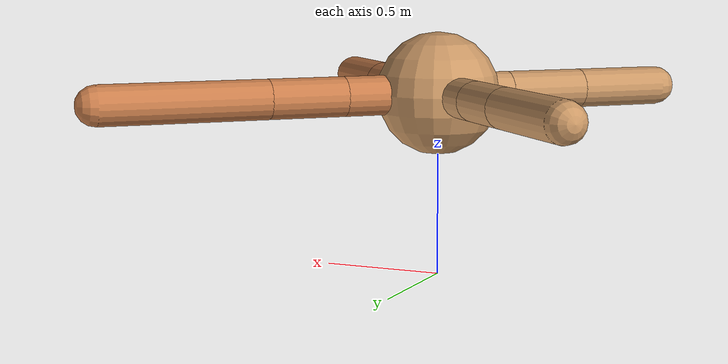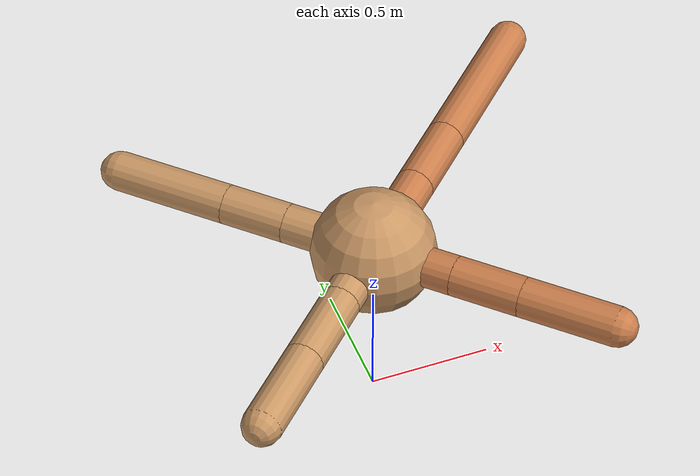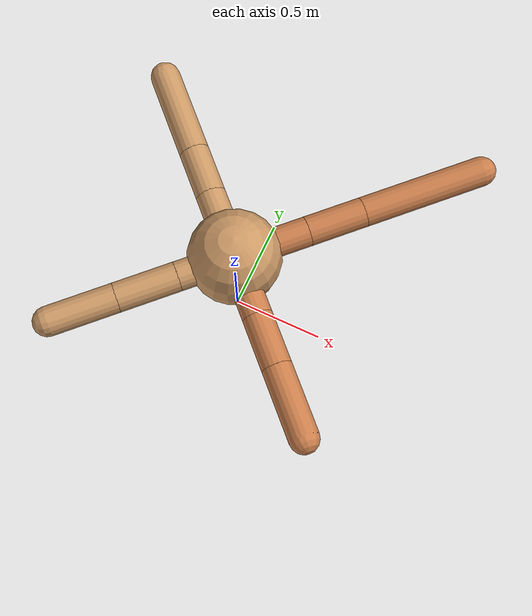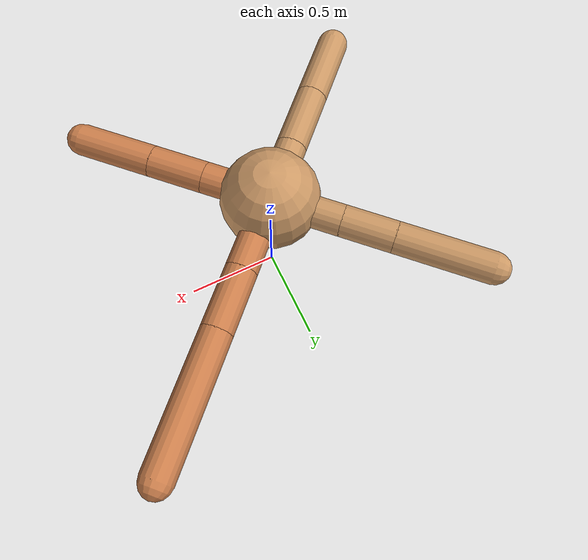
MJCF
<mujoco model="ant">
  <compiler angle="degree" coordinate="local" inertiafromgeom="true" />
  <option integrator="RK4" timestep="0.01" />
  <custom>
    <numeric data="0.0 0.0 0.55 1.0 0.0 0.0 0.0 0.0 1.0 0.0 -1.0 0.0 -1.0 0.0 1.0" name="init_qpos" />
  </custom>
  <default>
    <joint armature="1" damping="1" limited="true" />
    <geom conaffinity="0" condim="3" density="5.0" friction="1.5 0.1 0.1" margin="0.01" rgba="0.8 0.6 0.4 1" />
  </default>
  <worldbody>
    <body name="torso" pos="0 0 0.75">
      <geom name="torso_geom" pos="0 0 0" size="0.25" type="sphere" />

      <body name="front_left_leg" pos="0 0 0">
        <geom fromto="0.0 0.0 0.0 0.2859385372810766 0.2859385372810766 0.0" name="aux_1_geom" size="0.08" type="capsule" rgba=".8 .5 .3 1" />
        <body name="aux_1" pos="0.2859385372810766 0.2859385372810766 0.0">
          <joint axis="0 0 1" name="hip_1" pos="0.0 0.0 0.0" range="-40 40" type="hinge" />
          <geom fromto="0.0 0.0 0.0 0.21979011343541655 0.21979011343541655 0.0" name="left_leg_geom" size="0.08" type="capsule" rgba=".8 .5 .3 1" />
          <body pos="0.21979011343541655 0.21979011343541655 0.0" name="front_left_foot">
            <joint axis="-1 1 0" name="ankle_1" pos="0.0 0.0 0.0" range="30 100" type="hinge" />
            <geom fromto="0.0 0.0 0.0 0.47463465256232573 0.47463465256232573 0.0" name="left_ankle_geom" size="0.08" type="capsule" rgba=".8 .5 .3 1" />
          </body>
        </body>
      </body>
      <body name="front_right_leg" pos="0 0 0">
        <geom fromto="0.0 0.0 0.0 -0.2603021658703614 0.2603021658703614 0.0" name="aux_2_geom" size="0.08" type="capsule" />
        <body name="aux_2" pos="-0.2603021658703614 0.2603021658703614 0.0">
          <joint axis="0 0 1" name="hip_2" pos="0.0 0.0 0.0" range="-40 40" type="hinge" />
          <geom fromto="0.0 0.0 0.0 -0.18655810813117732 0.18655810813117732 0.0" name="right_leg_geom" size="0.08" type="capsule" />
          <body pos="-0.18655810813117732 0.18655810813117732 0.0" name="front_right_foot">
            <joint axis="1 1 0" name="ankle_2" pos="0.0 0.0 0.0" range="-100 -30" type="hinge" />
            <geom fromto="0.0 0.0 0.0 -0.3384754704927733 0.3384754704927733 0.0" name="right_ankle_geom" size="0.08" type="capsule" />
          </body>
        </body>
      </body>
      <body name="left_back_leg" pos="0 0 0">
        <geom fromto="0.0 0.0 0.0 -0.2206151107918263 -0.2206151107918263 0.0" name="aux_3_geom" size="0.08" type="capsule" />
        <body name="aux_3" pos="-0.2206151107918263 -0.2206151107918263 0.0">
          <joint axis="0 0 1" name="hip_3" pos="0.0 0.0 0.0" range="-40 40" type="hinge" />
          <geom fromto="0.0 0.0 0.0 -0.23331743413509765 -0.23331743413509765 0.0" name="back_leg_geom" size="0.08" type="capsule" />
          <body pos="-0.23331743413509765 -0.23331743413509765 0.0" name="left_back_foot">
            <joint axis="-1 1 0" name="ankle_3" pos="0.0 0.0 0.0" range="-100 -30" type="hinge" />
            <geom fromto="0.0 0.0 0.0 -0.25807727140990144 -0.25807727140990144 0.0" name="third_ankle_geom" size="0.08" type="capsule" />
          </body>
        </body>
      </body>
      <body name="right_back_leg" pos="0 0 0">
        <geom fromto="0.0 0.0 0.0 0.24400351738328255 -0.24400351738328255 0.0" name="aux_4_geom" size="0.08" type="capsule" rgba=".8 .5 .3 1" />
        <body name="aux_4" pos="0.24400351738328255 -0.24400351738328255 0.0">
          <joint axis="0 0 1" name="hip_4" pos="0.0 0.0 0.0" range="-40 40" type="hinge" />
          <geom fromto="0.0 0.0 0.0 0.2000885055518575 -0.2000885055518575 0.0" name="rightback_leg_geom" size="0.08" type="capsule" rgba=".8 .5 .3 1" />
          <body pos="0.2000885055518575 -0.2000885055518575 0.0" name="right_back_foot">
            <joint axis="1 1 0" name="ankle_4" pos="0.0 0.0 0.0" range="30 100" type="hinge" />
            <geom fromto="0.0 0.0 0.0 0.2734761060306345 -0.2734761060306345 0.0" name="fourth_ankle_geom" size="0.08" type="capsule" rgba=".8 .5 .3 1" />
          </body>
        </body>
      </body>
    </body>
  </worldbody>
  <actuator>
    <motor ctrllimited="true" ctrlrange="-1.0 1.0" joint="hip_4" gear="150" />
    <motor ctrllimited="true" ctrlrange="-1.0 1.0" joint="ankle_4" gear="150" />
    <motor ctrllimited="true" ctrlrange="-1.0 1.0" joint="hip_1" gear="150" />
    <motor ctrllimited="true" ctrlrange="-1.0 1.0" joint="ankle_1" gear="150" />
    <motor ctrllimited="true" ctrlrange="-1.0 1.0" joint="hip_2" gear="150" />
    <motor ctrllimited="true" ctrlrange="-1.0 1.0" joint="ankle_2" gear="150" />
    <motor ctrllimited="true" ctrlrange="-1.0 1.0" joint="hip_3" gear="150" />
    <motor ctrllimited="true" ctrlrange="-1.0 1.0" joint="ankle_3" gear="150" />
  </actuator>
</mujoco>
